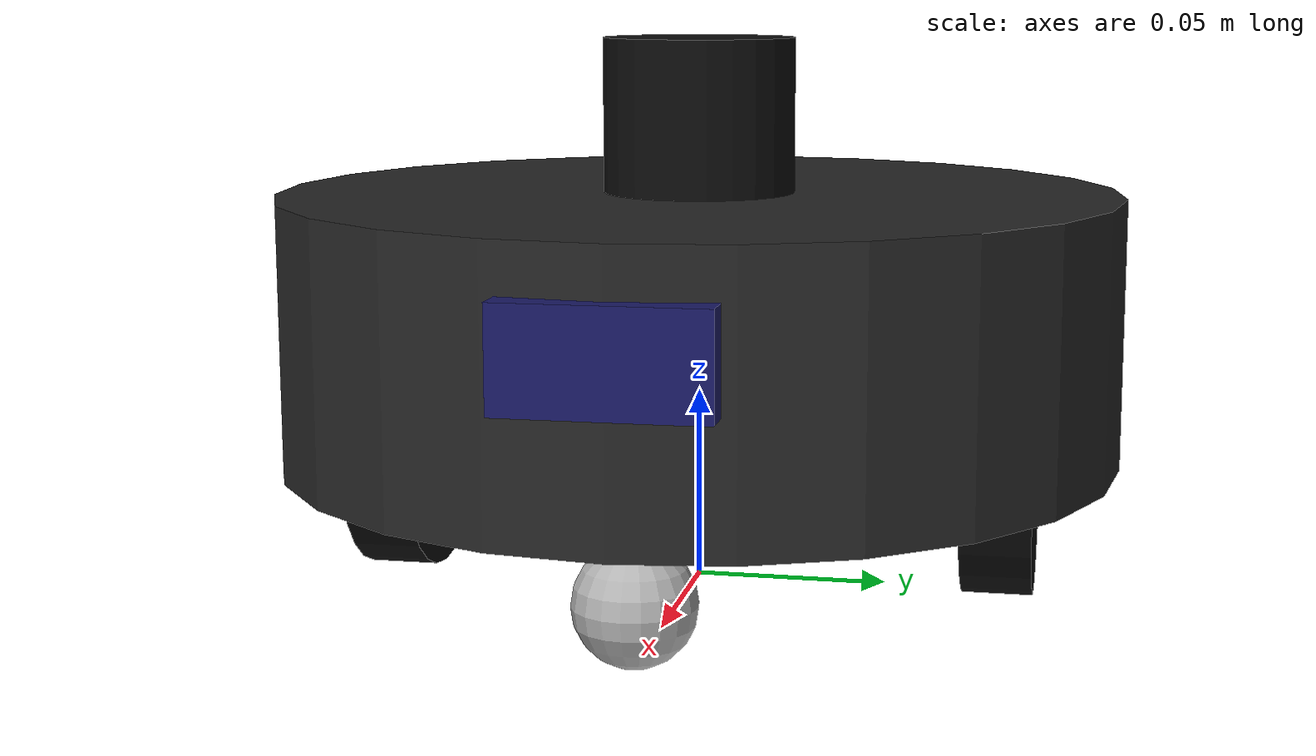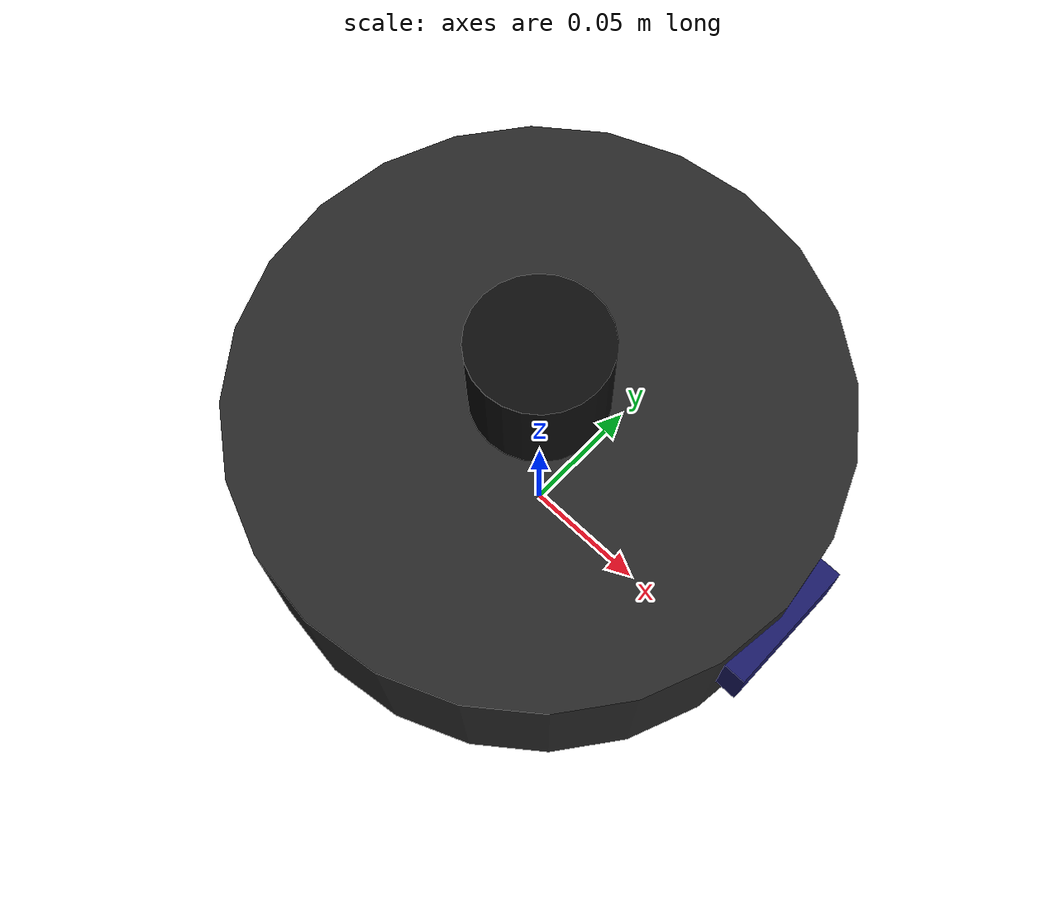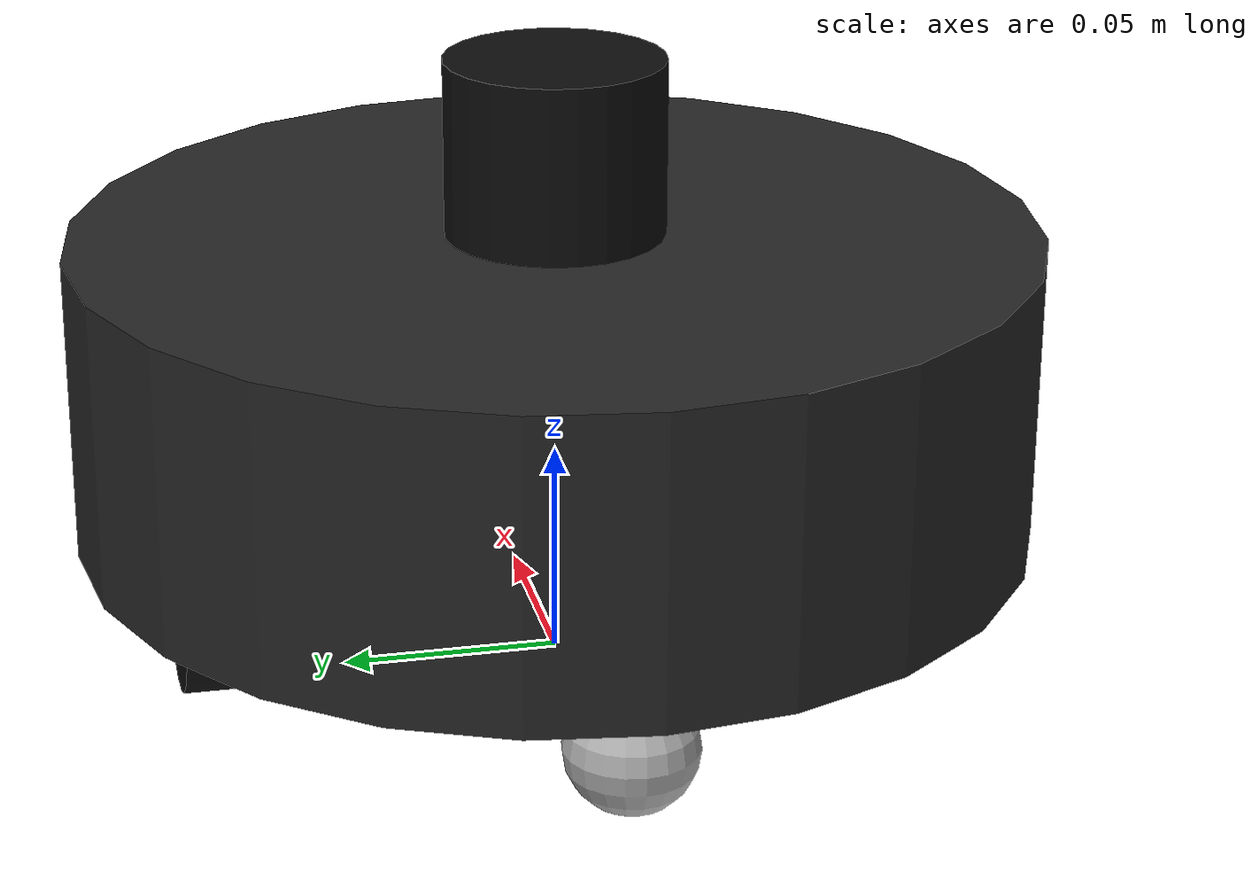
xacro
<?xml version="1.0"?>
<robot name="embobot" xmlns:xacro="http://www.ros.org/wiki/xacro">

  <!-- 命令行参数：ros2 launch ... use_sim:=true/false -->
  <xacro:arg name="use_sim" default="true"/>
  <xacro:arg name="use_mock" default="false"/>

  <!-- 颜色材质定义（URDF 部分用，Gazebo 用自己的） -->
  <material name="dark_gray"><color rgba="0.15 0.15 0.15 1.0"/></material>
  <material name="black"><color rgba="0.05 0.05 0.05 1.0"/></material>
  <material name="dark_blue"><color rgba="0.1 0.1 0.4 1.0"/></material>
  <material name="light_gray"><color rgba="0.7 0.7 0.7 1.0"/></material>

  <!-- 引入所有子模块（顺序很重要：macros 必须第一个） -->
  <xacro:include filename="$(find embobot_description)/xacro/macros.xacro"/>
  <xacro:include filename="$(find embobot_description)/xacro/base.xacro"/>
  <xacro:include filename="$(find embobot_description)/xacro/wheels.xacro"/>
  <xacro:include filename="$(find embobot_description)/xacro/sensors.xacro"/>

  <!-- Gazebo 标签只在仿真时需要 -->
  <xacro:if value="$(arg use_sim)">
    <xacro:include filename="$(find embobot_description)/xacro/gazebo.xacro"/>
  </xacro:if>

  <!-- ros2_control 在 Gazebo、mock、真实硬件三种模式下都需要 -->
  <xacro:include filename="$(find embobot_description)/xacro/ros2_control.xacro"/>

</robot>

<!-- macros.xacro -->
<robot xmlns:xacro="http://www.ros.org/wiki/xacro">

  <!-- ════════════════════════════
       全局尺寸常量（所有数字只写一次）
  ════════════════════════════════ -->

  <!-- 底盘 -->
  <xacro:property name="base_radius"  value="0.110"/>
  <xacro:property name="base_height"  value="0.070"/>
  <xacro:property name="base_mass"    value="1.5"/>

  <!-- 驱动轮 -->
  <xacro:property name="wheel_radius" value="0.033"/>
  <xacro:property name="wheel_width"  value="0.018"/>
  <xacro:property name="wheel_mass"   value="0.2"/>
  <xacro:property name="track_width"  value="0.160"/>

  <!-- 万向轮 -->
  <xacro:property name="caster_radius" value="0.015"/>
  <xacro:property name="caster_x"      value="0.080"/>

  <!-- ════════════════════════════
       惯性矩辅助宏
       ——避免每次手算，直接调用
  ════════════════════════════════ -->
  <!-- 实心圆柱（轴沿 Z）：ixx=iyy=m*(3r²+h²)/12, izz=m*r²/2 -->
  <xacro:macro name="cylinder_inertia" params="m r h">
    <inertial>
      <mass value="${m}"/>
      <inertia ixx="${m*(3*r*r+h*h)/12}" ixy="0.0" ixz="0.0"
               iyy="${m*(3*r*r+h*h)/12}" iyz="0.0"
               izz="${m*r*r/2}"/>
    </inertial>
  </xacro:macro>

  <!-- 实心球：ixx=iyy=izz=2*m*r²/5 -->
  <xacro:macro name="sphere_inertia" params="m r">
    <inertial>
      <mass value="${m}"/>
      <inertia ixx="${2*m*r*r/5}" ixy="0.0" ixz="0.0"
               iyy="${2*m*r*r/5}" iyz="0.0"
               izz="${2*m*r*r/5}"/>
    </inertial>
  </xacro:macro>

  <!-- 均匀长方体：ixx=m*(y²+z²)/12, iyy=m*(x²+z²)/12, izz=m*(x²+y²)/12 -->
  <xacro:macro name="box_inertia" params="m x y z">
    <inertial>
      <mass value="${m}"/>
      <inertia ixx="${m*(y*y+z*z)/12}" ixy="0.0" ixz="0.0"
               iyy="${m*(x*x+z*z)/12}" iyz="0.0"
               izz="${m*(x*x+y*y)/12}"/>
    </inertial>
  </xacro:macro>

  <!-- ════════════════════════════
       轮子宏（核心：消除左右轮重复）
  ════════════════════════════════ -->
  <xacro:macro name="wheel" params="name y_offset">
    <link name="${name}_wheel_link">
      <visual>
        <!-- rpy="${pi/2} 0 0" 将圆柱从竖直转为水平 -->
        <origin xyz="0 0 0" rpy="${pi/2} 0 0"/>
        <geometry>
          <cylinder radius="${wheel_radius}" length="${wheel_width}"/>
        </geometry>
        <material name="black"/>
      </visual>
      <collision>
        <origin xyz="0 0 0" rpy="${pi/2} 0 0"/>
        <geometry>
          <cylinder radius="${wheel_radius}" length="${wheel_width}"/>
        </geometry>
      </collision>
      <!-- 调用惯性矩辅助宏（水平轴圆柱，x/z 轴为长轴） -->
      <xacro:cylinder_inertia m="${wheel_mass}" r="${wheel_radius}" h="${wheel_width}"/>
    </link>

    <joint name="${name}_wheel_joint" type="continuous">
      <parent link="base_link"/>
      <child link="${name}_wheel_link"/>
      <origin xyz="0 ${y_offset} ${-base_height/2}" rpy="0 0 0"/>
      <axis xyz="0 1 0"/>
    </joint>
  </xacro:macro>

</robot>

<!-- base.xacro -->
<robot xmlns:xacro="http://www.ros.org/wiki/xacro">

  <!-- base_footprint：虚拟根节点 -->
  <link name="base_footprint"/>
  <joint name="base_footprint_joint" type="fixed">
    <parent link="base_footprint"/>
    <child link="base_link"/>
    <origin xyz="0.0 0.0 ${base_height/2 + wheel_radius}" rpy="0 0 0"/>
  </joint>

  <!-- 底盘主体 -->
  <link name="base_link">
    <visual>
      <origin xyz="0 0 0" rpy="0 0 0"/>
      <geometry><cylinder radius="${base_radius}" length="${base_height}"/></geometry>
      <material name="dark_gray"/>
    </visual>
    <collision>
      <origin xyz="0 0 0" rpy="0 0 0"/>
      <geometry><cylinder radius="${base_radius}" length="${base_height}"/></geometry>
    </collision>
    <xacro:cylinder_inertia m="${base_mass}" r="${base_radius}" h="${base_height}"/>
  </link>

  <!-- 前万向轮 -->
  <link name="caster_link">
    <visual>
      <geometry><sphere radius="${caster_radius}"/></geometry>
      <material name="light_gray"/>
    </visual>
    <collision>
      <geometry><sphere radius="${caster_radius}"/></geometry>
    </collision>
    <xacro:sphere_inertia m="0.05" r="${caster_radius}"/>
  </link>
  <joint name="caster_joint" type="fixed">
    <parent link="base_link"/>
    <child link="caster_link"/>
    <origin xyz="${caster_x} 0.0 ${caster_radius - (base_height/2 + wheel_radius)}" rpy="0 0 0"/>
  </joint>

  <!-- 后万向轮：与前万向轮形成前后支撑，减少加减速时车体俯仰 -->
  <link name="rear_caster_link">
    <visual>
      <geometry><sphere radius="${caster_radius}"/></geometry>
      <material name="light_gray"/>
    </visual>
    <collision>
      <geometry><sphere radius="${caster_radius}"/></geometry>
    </collision>
    <xacro:sphere_inertia m="0.05" r="${caster_radius}"/>
  </link>
  <joint name="rear_caster_joint" type="fixed">
    <parent link="base_link"/>
    <child link="rear_caster_link"/>
    <origin xyz="${-caster_x} 0.0 ${caster_radius - (base_height/2 + wheel_radius)}" rpy="0 0 0"/>
  </joint>

</robot>

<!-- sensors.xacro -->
<robot xmlns:xacro="http://www.ros.org/wiki/xacro">

  <!-- 激光雷达 -->
  <link name="lidar_link">
    <visual>
      <origin xyz="0 0 0" rpy="0 0 0"/>
      <geometry><cylinder radius="0.025" length="0.040"/></geometry>
      <material name="black"/>
    </visual>
    <collision>
      <origin xyz="0 0 0" rpy="0 0 0"/>
      <geometry><cylinder radius="0.025" length="0.040"/></geometry>
    </collision>
    <xacro:cylinder_inertia m="0.15" r="0.025" h="0.040"/>
  </link>
  <joint name="lidar_joint" type="fixed">
    <parent link="base_link"/>
    <child link="lidar_link"/>
    <origin xyz="0.0 0.0 ${base_height/2 + 0.020}" rpy="0 0 0"/>
  </joint>

  <!-- 摄像头 -->
  <link name="camera_link">
    <visual>
      <geometry><box size="0.030 0.050 0.025"/></geometry>
      <material name="dark_blue"/>
    </visual>
    <collision>
      <geometry><box size="0.030 0.050 0.025"/></geometry>
    </collision>
    <xacro:box_inertia m="0.05" x="0.030" y="0.050" z="0.025"/>
  </link>
  <joint name="camera_joint" type="fixed">
    <parent link="base_link"/>
    <child link="camera_link"/>
    <origin xyz="${base_radius - 0.010} 0.0 0.010" rpy="0 0 0"/>
  </joint>

  <!-- 相机光学坐标系（Z 向前，X 向右，Y 向下）-->
  <link name="camera_optical_frame"/>
  <joint name="camera_optical_joint" type="fixed">
    <parent link="camera_link"/>
    <child link="camera_optical_frame"/>
    <origin xyz="0 0 0" rpy="${-pi/2} 0 ${-pi/2}"/>
  </joint>

</robot>
